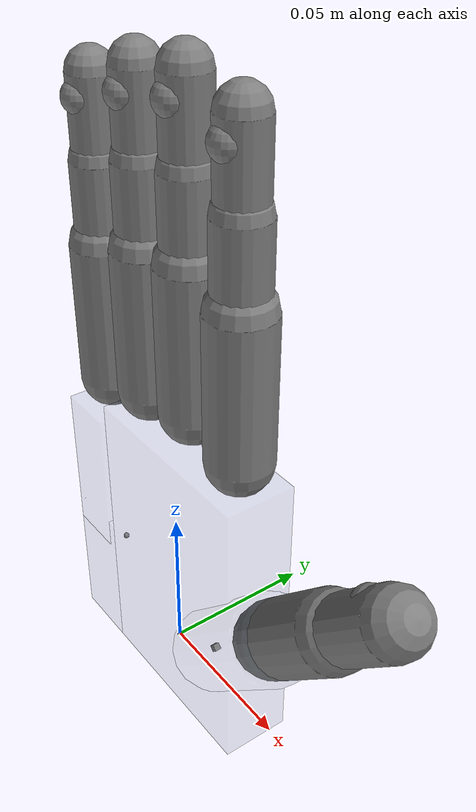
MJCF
<mujoco model="MuJoCo Model">
    <compiler angle="radian" meshdir="skillmimic/data/assets/mjcf/shadow/meshes_shadow" />
    <size njmax="500" nconmax="100"  />
    <asset>
        <mesh name="robot0:forearm" file="forearm_electric.obj"></mesh>
        <mesh name="robot0:forearm_cvx" file="forearm_electric_cvx.obj"></mesh>
        <mesh name="robot0:wrist" scale="0.001 0.001 0.001" file="wrist.obj"></mesh>
        <mesh name="robot0:palm" scale="0.001 0.001 0.001" file="palm.obj"></mesh>
        <mesh name="robot0:knuckle" scale="0.001 0.001 0.001" file="knuckle.obj"></mesh>
        <mesh name="robot0:F3" scale="0.001 0.001 0.001" file="F3.obj"></mesh>
        <mesh name="robot0:F2" scale="0.001 0.001 0.001" file="F2.obj"></mesh>
        <mesh name="robot0:F1" scale="0.001 0.001 0.001" file="F1.obj"></mesh>
        <mesh name="robot0:lfmetacarpal" scale="0.001 0.001 0.001" file="lfmetacarpal.obj"></mesh>
        <mesh name="robot0:TH3_z" scale="0.001 0.001 0.001" file="TH3_z.obj"></mesh>
        <mesh name="robot0:TH2_z" scale="0.001 0.001 0.001" file="TH2_z.obj"></mesh>
        <mesh name="robot0:TH1_z" scale="0.001 0.001 0.001" file="TH1_z.obj"></mesh>
    </asset>

    <worldbody>
        <body name="allegro_wrist" pos="0 0 0">
            <body name="allegro_root1" pos="0 0 0">
                <inertial pos="0 0 0" quat="0.707107 0 0 0.707107" mass="0.001" diaginertia="0.00333333 0.00333333 0.00333333" />
                <joint name="x_joint" pos="0 0 0" axis="1 0 0" type="slide" limited="true" range="-2 2" frictionloss="0.0001" />
                <body name="allegro_root2" pos="0 0 0">
                    <inertial pos="0 0 0" quat="0.707107 0 0 0.707107" mass="0.001" diaginertia="0.00333333 0.00333333 0.00333333" />
                    <joint name="y_joint" pos="0 0 0" axis="0 1 0" type="slide" limited="true" range="-2 2" frictionloss="0.0001" />
                    <body name="allegro_root3" pos="0 0 0">
                        <inertial pos="0 0 0" quat="0.707107 0 0 0.707107" mass="0.001" diaginertia="0.00333333 0.00333333 0.00333333" />
                        <joint name="z_joint" pos="0 0 0" axis="0 0 1" type="slide" limited="true" range="-2 2" frictionloss="0.0001" />
                        <body name="allegro_root4" pos="0 0 0">
                            <inertial pos="0 0 0" quat="0.707107 0 0 0.707107" mass="0.001" diaginertia="0.00333333 0.00333333 0.00333333" />
                            <joint name="x_rotation_joint" pos="0 0 0" axis="1 0 0" limited="true" range="-6.28 6.28" frictionloss="0.0001" />
                            <body name="allegro_root5" pos="0 0 0">
                                <inertial pos="0 0 0" quat="0.707107 0 0 0.707107" mass="0.001" diaginertia="0.00333333 0.00333333 0.00333333" />
                                <joint name="y_rotation_joint" pos="0 0 0" axis="0 1 0" limited="true" range="-6.28 6.28" frictionloss="0.0001" />
                                <body name="robot0:palm">
                                    <inertial pos="0.006 0 0.036" quat="0.715833 0.0439898 0.0749825 0.692839" mass="0.3" diaginertia="0.001 0.001 0.001" />
                                    <joint name="z_rotation_joint" pos="0 0 0" axis="0 0 1" limited="true" range="-6.28 6.28" frictionloss="0.0001" />
                                    <geom name="robot0:V_palm" size="0.001 0.001 0.001" mesh="robot0:palm"></geom>
                                    <geom name="robot0:C_palm0" size="0.032 0.0111 0.049" pos="0.011 0 0.038" type="box" rgba="0.4 0.5 0.6 0.1" />
                                    <geom name="robot0:C_palm1" size="0.011 0.0111 0.025" pos="-0.032 0 0.014" type="box" rgba="0.4 0.5 0.6 0.1" />
                                    <body name="robot0:ffknuckle" pos="0.033 0 0.095">
                                        <inertial pos="0 0 0" quat="0.520062 0.854102 0.00600072 -0.00300036" mass="0.008" diaginertia="1e-05 1e-05 1e-05" />
                                        <joint name="robot0:FFJ3" pos="0 0 0" axis="0 1 0" limited="true" range="-0.349 0.349" frictionloss="0.0001" user="1103" />
                                        <body name="robot0:ffproximal" pos="0 0 0">
                                            <inertial pos="0 0 0.023" quat="0.707095 -0.00400054 0.00400054 0.707095" mass="0.014" diaginertia="1e-05 1e-05 1e-05" />
                                            <joint name="robot0:FFJ2" pos="0 0 0" axis="1 0 0" limited="true" range="0 1.571" frictionloss="0.0001" user="1102" />
                                            <geom name="robot0:V_ffproximal" size="0.001 0.001 0.001" mesh="robot0:F3"></geom>
                                            <geom name="robot0:C_ffproximal" size="0.01 0.0225" pos="0 0 0.0225" type="capsule" />
                                            <body name="robot0:ffmiddle" pos="0 0 0.045">
                                                <inertial pos="0 0 0.011" quat="0.707107 0 0 0.707107" mass="0.012" diaginertia="1e-05 1e-05 1e-05" />
                                                <joint name="robot0:FFJ1" pos="0 0 0" axis="1 0 0" limited="true" range="0 1.571" frictionloss="0.0001" user="1101" />
                                                <geom name="robot0:V_ffmiddle" size="0.001 0.001 0.001" mesh="robot0:F2"></geom>
                                                <geom name="robot0:C_ffmiddle" size="0.00805 0.0125" pos="0 0 0.0125" type="capsule" />
                                                <body name="robot0:ffdistal" pos="0 0 0.025">
                                                    <inertial pos="0 0 0.015" quat="0.7071 -0.00300043 0.00300043 0.7071" mass="0.01" diaginertia="1e-05 1e-05 1e-05" />
                                                    <joint name="robot0:FFJ0" pos="0 0 0" axis="1 0 0" limited="true" range="0 1.571" frictionloss="0.0001" user="1100" />
                                                    <geom name="robot0:V_ffdistal" pos="0 0 0.001" size="0.001 0.001 0.001" mesh="robot0:F1"></geom>
                                                    <geom name="robot0:C_ffdistal" size="0.00705 0.012" pos="0 0 0.012" type="capsule" condim="4" />
                                                    <site name="robot0:S_fftip" pos="0 0 0.026" group="3" />
                                                    <site name="robot0:Tch_fftip" pos="0 -0.004 0.018" />
                                                </body>
                                            </body>
                                        </body>
                                    </body>
                                    <body name="robot0:mfknuckle" pos="0.011 0 0.099">
                                        <inertial pos="0 0 0" quat="0.520062 0.854102 0.00600072 -0.00300036" mass="0.008" diaginertia="1e-05 1e-05 1e-05" />
                                        <joint name="robot0:MFJ3" pos="0 0 0" axis="0 1 0" limited="true" range="-0.349 0.349" frictionloss="0.0001" user="1107" />
                                        <body name="robot0:mfproximal" pos="0 0 0">
                                            <inertial pos="0 0 0.023" quat="0.707095 -0.00400054 0.00400054 0.707095" mass="0.014" diaginertia="1e-05 1e-05 1e-05" />
                                            <joint name="robot0:MFJ2" pos="0 0 0" axis="1 0 0" limited="true" range="0 1.571" frictionloss="0.0001" user="1106" />
                                            <geom name="robot0:V_mfproximal" size="0.001 0.001 0.001" mesh="robot0:F3"></geom>
                                            <geom name="robot0:C_mfproximal" size="0.01 0.0225" pos="0 0 0.0225" type="capsule" />
                                            <body name="robot0:mfmiddle" pos="0 0 0.045">
                                                <inertial pos="0 0 0.012" quat="0.707107 0 0 0.707107" mass="0.012" diaginertia="1e-05 1e-05 1e-05" />
                                                <joint name="robot0:MFJ1" pos="0 0 0" axis="1 0 0" limited="true" range="0 1.571" frictionloss="0.0001" user="1105" />
                                                <geom name="robot0:V_mfmiddle" size="0.001 0.001 0.001" mesh="robot0:F2"></geom>
                                                <geom name="robot0:C_mfmiddle" size="0.00805 0.0125" pos="0 0 0.0125" type="capsule" />
                                                <body name="robot0:mfdistal" pos="0 0 0.025">
                                                    <inertial pos="0 0 0.015" quat="0.7071 -0.00300043 0.00300043 0.7071" mass="0.01" diaginertia="1e-05 1e-05 1e-05" />
                                                    <joint name="robot0:MFJ0" pos="0 0 0" axis="1 0 0" limited="true" range="0 1.571" frictionloss="0.0001" user="1104" />
                                                    <geom name="robot0:V_mfdistal" size="0.001 0.001 0.001" mesh="robot0:F1"></geom>
                                                    <geom name="robot0:C_mfdistal" size="0.00705 0.012" pos="0 0 0.012" type="capsule" condim="4" />
                                                    <site name="robot0:S_mftip" pos="0 0 0.026" group="3" />
                                                    <site name="robot0:Tch_mftip" pos="0 -0.004 0.018" />
                                                </body>
                                            </body>
                                        </body>
                                    </body>
                                    <body name="robot0:rfknuckle" pos="-0.011 0 0.095">
                                        <inertial pos="0 0 0" quat="0.520062 0.854102 0.00600072 -0.00300036" mass="0.008" diaginertia="1e-05 1e-05 1e-05" />
                                        <joint name="robot0:RFJ3" pos="0 0 0" axis="0 1 0" limited="true" range="-0.349 0.349" frictionloss="0.0001" user="1111" />
                                        <body name="robot0:rfproximal" pos="0 0 0">
                                            <inertial pos="0 0 0.023" quat="0.707095 -0.00400054 0.00400054 0.707095" mass="0.014" diaginertia="1e-05 1e-05 1e-05" />
                                            <joint name="robot0:RFJ2" pos="0 0 0" axis="1 0 0" limited="true" range="0 1.571" frictionloss="0.0001" user="1110" />
                                            <geom name="robot0:V_rfproximal" size="0.001 0.001 0.001" mesh="robot0:F3"></geom>
                                            <geom name="robot0:C_rfproximal" size="0.01 0.0225" pos="0 0 0.0225" type="capsule" />
                                            <body name="robot0:rfmiddle" pos="0 0 0.045">
                                                <inertial pos="0 0 0.012" quat="0.707107 0 0 0.707107" mass="0.012" diaginertia="1e-05 1e-05 1e-05" />
                                                <joint name="robot0:RFJ1" pos="0 0 0" axis="1 0 0" limited="true" range="0 1.571" frictionloss="0.0001" user="1109" />
                                                <geom name="robot0:V_rfmiddle" size="0.001 0.001 0.001" mesh="robot0:F2"></geom>
                                                <geom name="robot0:C_rfmiddle" size="0.00805 0.0125" pos="0 0 0.0125" type="capsule" />
                                                <body name="robot0:rfdistal" pos="0 0 0.025">
                                                    <inertial pos="0 0 0.015" quat="0.7071 -0.00300043 0.00300043 0.7071" mass="0.01" diaginertia="1e-05 1e-05 1e-05" />
                                                    <joint name="robot0:RFJ0" pos="0 0 0" axis="1 0 0" limited="true" range="0 1.571" frictionloss="0.0001" user="1108" />
                                                    <geom name="robot0:V_rfdistal" size="0.001 0.001 0.001" mesh="robot0:F1" pos="0 0 0.001"></geom>
                                                    <geom name="robot0:C_rfdistal" size="0.00705 0.012" pos="0 0 0.012" type="capsule" condim="4" />
                                                    <site name="robot0:S_rftip" pos="0 0 0.026" group="3" />
                                                    <site name="robot0:Tch_rftip" pos="0 -0.004 0.018" />
                                                </body>
                                            </body>
                                        </body>
                                    </body>
                                    <body name="robot0:lfmetacarpal" pos="-0.017 0 0.044">
                                        <inertial pos="-0.014 0.001 0.014" quat="0.709167 -0.0920216 -0.0630148 0.696164" mass="0.075" diaginertia="1e-05 1e-05 1e-05" />
                                        <joint name="robot0:LFJ4" pos="0 0 0" axis="0.570977 0 0.820966" limited="true" range="0 0.785" frictionloss="0.0001" user="1116" />
                                        <geom name="robot0:V_lfmetacarpal" pos="-0.016 0 -0.023" size="0.001 0.001 0.001" mesh="robot0:lfmetacarpal"></geom>
                                        <geom name="robot0:C_lfmetacarpal" size="0.0095 0.0111 0.025" pos="-0.0165 0 0.01" type="box" rgba="0.4 0.5 0.6 0.2" />
                                        <body name="robot0:lfknuckle" pos="-0.017 0 0.044">
                                            <inertial pos="0 0 0" quat="0.520062 0.854102 0.00600072 -0.00300036" mass="0.008" diaginertia="1e-05 1e-05 1e-05" />
                                            <joint name="robot0:LFJ3" pos="0 0 0" axis="0 1 0" limited="true" range="-0.349 0.349" frictionloss="0.0001" user="1115" />
                                            <body name="robot0:lfproximal" pos="0 0 0">
                                                <inertial pos="0 0 0.023" quat="0.707095 -0.00400054 0.00400054 0.707095" mass="0.014" diaginertia="1e-05 1e-05 1e-05" />
                                                <joint name="robot0:LFJ2" pos="0 0 0" axis="1 0 0" limited="true" range="0 1.571" frictionloss="0.0001" user="1114" />
                                                <geom name="robot0:V_lfproximal" size="0.001 0.001 0.001" mesh="robot0:F3"></geom>
                                                <geom name="robot0:C_lfproximal" size="0.01 0.0225" pos="0 0 0.0225" type="capsule" />
                                                <body name="robot0:lfmiddle" pos="0 0 0.045">
                                                    <inertial pos="0 0 0.012" quat="0.707107 0 0 0.707107" mass="0.012" diaginertia="1e-05 1e-05 1e-05" />
                                                    <joint name="robot0:LFJ1" pos="0 0 0" axis="1 0 0" limited="true" range="0 1.571" frictionloss="0.0001" user="1113" />
                                                    <geom name="robot0:V_lfmiddle" size="0.001 0.001 0.001" mesh="robot0:F2"></geom>
                                                    <geom name="robot0:C_lfmiddle" size="0.00805 0.0125" pos="0 0 0.0125" type="capsule" />
                                                    <body name="robot0:lfdistal" pos="0 0 0.025">
                                                        <inertial pos="0 0 0.015" quat="0.7071 -0.00300043 0.00300043 0.7071" mass="0.01" diaginertia="1e-05 1e-05 1e-05" />
                                                        <joint name="robot0:LFJ0" pos="0 0 0" axis="1 0 0" limited="true" range="0 1.571" frictionloss="0.0001" user="1112" />
                                                        <geom name="robot0:V_lfdistal" size="0.001 0.001 0.001" mesh="robot0:F1" pos="0 0 0.001"></geom>
                                                        <geom name="robot0:C_lfdistal" size="0.00705 0.012" pos="0 0 0.012" type="capsule" condim="4" />
                                                        <site name="robot0:S_lftip" pos="0 0 0.026" group="3" />
                                                        <site name="robot0:Tch_lftip" pos="0 -0.004 0.018" />
                                                    </body>
                                                </body>
                                            </body>
                                        </body>
                                    </body>
                                    <body name="robot0:thbase" pos="0.034 -0.009 0.029" quat="0.923956 0 0.382499 0">
                                        <inertial pos="0 0 0" mass="0.01" diaginertia="1e-05 1e-05 1e-05" />
                                        <joint name="robot0:THJ4" pos="0 0 0" axis="0 0 -1" limited="true" range="-1.047 1.047" frictionloss="0.0001" user="1121" />
                                        <geom name="robot0:V_thbase" size="0.001 0.001 0.001" type="box" group="1" />
                                        <body name="robot0:thproximal" pos="0 0 0">
                                            <inertial pos="0 0 0.017" quat="0.981604 0 0.000999597 0.190923" mass="0.016" diaginertia="1e-05 1e-05 1e-05" />
                                            <joint name="robot0:THJ3" pos="0 0 0" axis="1 0 0" limited="true" range="0 1.222" frictionloss="0.0001" user="1120" />
                                            <geom name="robot0:V_thproximal" size="0.001 0.001 0.001" mesh="robot0:TH3_z"></geom>
                                            <geom name="robot0:C_thproximal" size="0.013 0.019" pos="0 0 0.019" type="capsule" rgba="0.4 0.5 0.6 0.1" />
                                            <body name="robot0:thhub" pos="0 0 0.038">
                                                <inertial pos="0 0 0" mass="0.002" diaginertia="1e-05 1e-05 1e-05" />
                                                <joint name="robot0:THJ2" pos="0 0 0" axis="1 0 0" limited="true" range="-0.209 0.209" frictionloss="0.0001" user="1119" />
                                                <geom name="robot0:V_thhub" size="0.001 0.001 0.001" type="box" group="1" />
                                                <body name="robot0:thmiddle" pos="0 0 0">
                                                    <inertial pos="0 0 0.016" quat="0.999971 -0.000999971 -0.00699979 0.00299991" mass="0.016" diaginertia="1e-05 1e-05 1e-05" />
                                                    <joint name="robot0:THJ1" pos="0 0 0" axis="0 1 0" limited="true" range="-0.524 0.524" frictionloss="0.0001" user="1118" />
                                                    <geom name="robot0:V_thmiddle" size="0.001 0.001 0.001" mesh="robot0:TH2_z"></geom>
                                                    <geom name="robot0:C_thmiddle" size="0.011 0.016" pos="0 0 0.016" type="capsule" />
                                                    <body name="robot0:thdistal" pos="0 0 0.032">
                                                        <inertial pos="0 0 0.016" quat="0.99887 -0.00499935 -0.0469939 0.00499935" mass="0.016" diaginertia="1e-05 1e-05 1e-05" />
                                                        <joint name="robot0:THJ0" pos="0 0 0" axis="0 1 0" limited="true" range="-1.571 0" frictionloss="0.0001" user="1117" />
                                                        <geom name="robot0:V_thdistal" size="0.001 0.001 0.001" mesh="robot0:TH1_z"></geom>
                                                        <geom name="robot0:C_thdistal" size="0.00918 0.013" pos="0 0 0.013" type="capsule" condim="4" />
                                                        <site name="robot0:S_thtip" pos="0 0 0.0275" group="3" />
                                                        <site name="robot0:Tch_thtip" pos="-0.005 0 0.02" size="0.005 0.011 0.016" />
                                                    </body>
                                                </body>
                                            </body>
                                        </body>
                                    </body>
                                </body>
                            </body>
                        </body>
                    </body>
                </body>
            </body>
        </body>
    </worldbody>

    <actuator>
        <motor name="robot0:x_joint" joint="x_joint"/>
        <motor name="robot0:y_joint" joint="y_joint"/>
        <motor name="robot0:z_joint" joint="z_joint"/>
        <motor name="robot0:x_rotation_joint" joint="x_rotation_joint"/>
        <motor name="robot0:y_rotation_joint" joint="y_rotation_joint"/>
        <motor name="robot0:z_rotation_joint" joint="z_rotation_joint"/>
        <motor name="robot0:A_FFJ3" joint="robot0:FFJ3"/>
        <motor name="robot0:A_FFJ2" joint="robot0:FFJ2"/>
        <motor name="robot0:A_FFJ1" joint="robot0:FFJ1"/>
        <motor name="robot0:A_MFJ3" joint="robot0:MFJ3"/>
        <motor name="robot0:A_MFJ2" joint="robot0:MFJ2"/>
        <motor name="robot0:A_MFJ1" joint="robot0:MFJ1"/>
        <motor name="robot0:A_RFJ3" joint="robot0:RFJ3"/>
        <motor name="robot0:A_RFJ2" joint="robot0:RFJ2"/>
        <motor name="robot0:A_RFJ1" joint="robot0:RFJ1"/>
        <motor name="robot0:A_LFJ4" joint="robot0:LFJ4"/>
        <motor name="robot0:A_LFJ3" joint="robot0:LFJ3"/>
        <motor name="robot0:A_LFJ2" joint="robot0:LFJ2"/>
        <motor name="robot0:A_LFJ1" joint="robot0:LFJ1"/>
        <motor name="robot0:A_THJ4" joint="robot0:THJ4"/>
        <motor name="robot0:A_THJ3" joint="robot0:THJ3"/>
        <motor name="robot0:A_THJ2" joint="robot0:THJ2"/>
        <motor name="robot0:A_THJ1" joint="robot0:THJ1"/>
    </actuator>
</mujoco>
